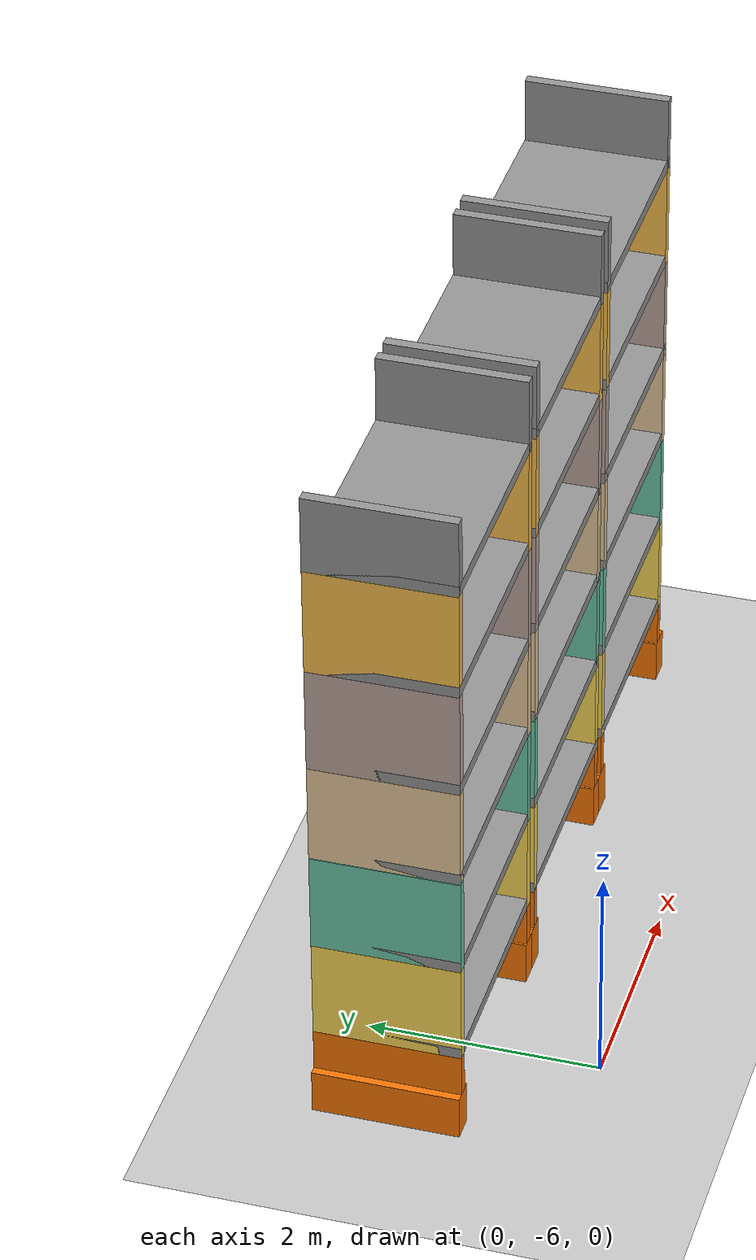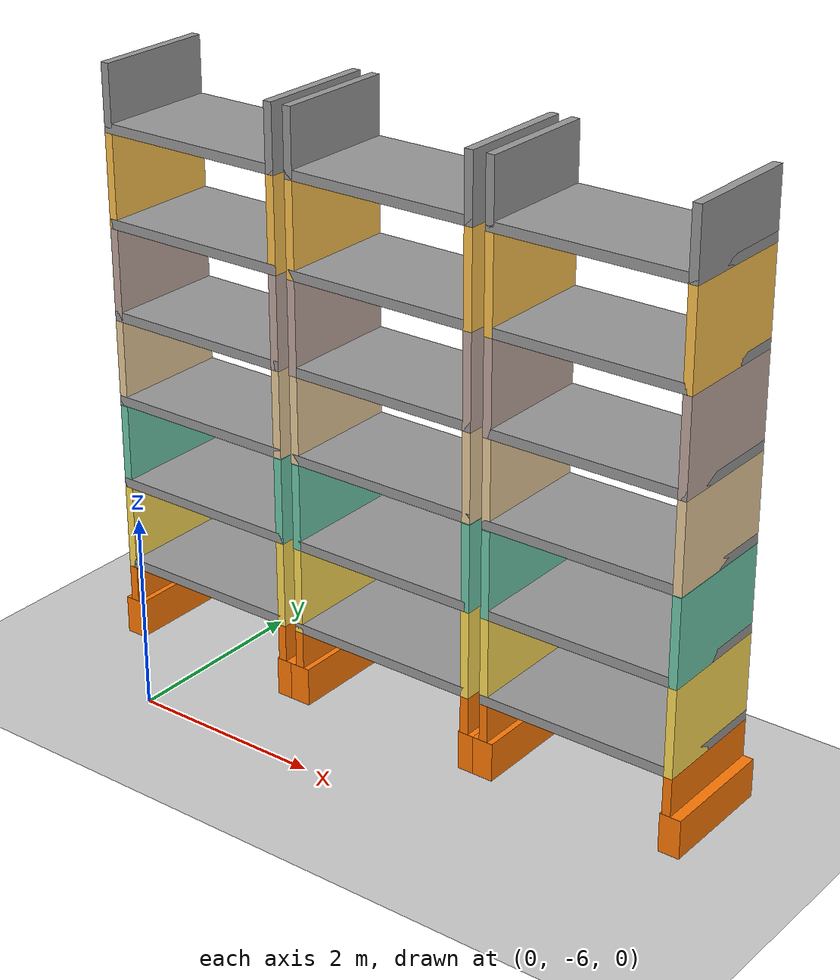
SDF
<sdf version="1.6">
 <world name="pseudo_world1">
  <model name="ground_plane">
   <static>1</static>
   <link name="link">
    <collision name="collision">
     <geometry><plane><normal>0 0 1</normal><size>100 100</size></plane></geometry>
     <surface><friction><ode><mu>100</mu><mu2>50</mu2></ode></friction></surface>
    </collision>
    <visual name="visual">
     <cast_shadows>0</cast_shadows>
     <geometry><plane><normal>0 0 1</normal><size>100 100</size></plane></geometry>
     <material>
      <script><uri>file://media/materials/scripts/gazebo.material</uri><name>Gazebo/Grey</name></script>
     </material>
    </visual>
   </link>
  </model>
  <model name="rack_whole_3">
   <static>1</static>
   <pose>0 -4.478 0 0 -0 0</pose>
   <link name="Base_L">
    <collision name="Base_L_Collision">
     <geometry><box><size>1.258 0.22 0.4</size></box></geometry>
     <pose>0 0 0.2 0 -0 0</pose>
    </collision>
    <visual name="Base_L_Visual">
     <pose>0 0 0.2 0 -0 0</pose>
     <geometry><box><size>1.258 0.22 0.4</size></box></geometry>
     <material>
      <script><uri>file://media/materials/scripts/gazebo.material</uri><name>Gazebo/Grey</name></script>
      <ambient>0.996078 0.47451 0.0196078 1</ambient>
     </material>
     <meta><layer>0</layer></meta>
    </visual>
    <pose>-1.02 0 0 0 -0 1.5708</pose>
   </link>
   <link name="Base_R">
    <collision name="Base_R_Collision">
     <geometry><box><size>1.258 0.22 0.4</size></box></geometry>
     <pose>0 0 0.2 0 -0 0</pose>
    </collision>
    <visual name="Base_R_Visual">
     <pose>0 0 0.2 0 -0 0</pose>
     <geometry><box><size>1.258 0.22 0.4</size></box></geometry>
     <material>
      <script><uri>file://media/materials/scripts/gazebo.material</uri><name>Gazebo/Grey</name></script>
      <ambient>0.996078 0.47451 0.0196078 1</ambient>
     </material>
     <meta><layer>0</layer></meta>
    </visual>
    <pose>1.02 0 0 0 -0 1.5708</pose>
   </link>
   <link name="Wall_1_L">
    <collision name="Wall_1_L_Collision">
     <geometry><box><size>1.258 0.09 0.387</size></box></geometry>
     <pose>0 0 0.1935 0 -0 0</pose>
    </collision>
    <visual name="Wall_1_L_Visual">
     <pose>0 0 0.1935 0 -0 0</pose>
     <geometry><box><size>1.258 0.09 0.387</size></box></geometry>
     <material>
      <script><uri>file://media/materials/scripts/gazebo.material</uri><name>Gazebo/Grey</name></script>
      <ambient>0.996078 0.47451 0.0196078 1</ambient>
     </material>
     <meta><layer>1</layer></meta>
    </visual>
    <pose>-1.015 0 0.4 0 -0 1.5708</pose>
   </link>
   <link name="Wall_1_R">
    <collision name="Wall_1_R_Collision">
     <geometry><box><size>1.258 0.09 0.387</size></box></geometry>
     <pose>0 0 0.1935 0 -0 0</pose>
    </collision>
    <visual name="Wall_1_R_Visual">
     <pose>0 0 0.1935 0 -0 0</pose>
     <geometry><box><size>1.258 0.09 0.387</size></box></geometry>
     <material>
      <script><uri>file://media/materials/scripts/gazebo.material</uri><name>Gazebo/Grey</name></script>
      <ambient>0.996078 0.47451 0.0196078 1</ambient>
     </material>
     <meta><layer>1</layer></meta>
    </visual>
    <pose>0.975 0 0.4 0 -0 1.5708</pose>
   </link>
   <link name="Floor_1">
    <collision name="Floor_1_Collision">
     <geometry><box><size>2.08 1.258 0.1</size></box></geometry>
     <pose>0 0 0.05 0 -0 0</pose>
    </collision>
    <visual name="Floor_1_Visual">
     <pose>0 0 0.05 0 -0 0</pose>
     <geometry><box><size>2.08 1.258 0.1</size></box></geometry>
     <material>
      <script><uri>file://media/materials/scripts/gazebo.material</uri><name>Gazebo/Grey</name></script>
      <ambient>1 1 1 1</ambient>
     </material>
     <meta><layer>2</layer></meta>
    </visual>
    <pose>-0.02 0 0.787 0 -0 0</pose>
   </link>
   <link name="Wall_2_L">
    <collision name="Wall_2_L_Collision">
     <geometry><box><size>1.258 0.09 0.905</size></box></geometry>
     <pose>0 0 0.4525 0 -0 0</pose>
    </collision>
    <visual name="Wall_2_L_Visual">
     <pose>0 0 0.4525 0 -0 0</pose>
     <geometry><box><size>1.258 0.09 0.905</size></box></geometry>
     <material>
      <script><uri>file://media/materials/scripts/gazebo.material</uri><name>Gazebo/Grey</name></script>
      <ambient>1 0.87 0.34 1</ambient>
     </material>
     <meta><layer>2</layer></meta>
    </visual>
    <pose>-1.015 0 0.787 0 -0 1.5708</pose>
   </link>
   <link name="Wall_2_R">
    <collision name="Wall_2_R_Collision">
     <geometry><box><size>1.258 0.09 0.905</size></box></geometry>
     <pose>0 0 0.4525 0 -0 0</pose>
    </collision>
    <visual name="Wall_2_R_Visual">
     <pose>0 0 0.4525 0 -0 0</pose>
     <geometry><box><size>1.258 0.09 0.905</size></box></geometry>
     <material>
      <script><uri>file://media/materials/scripts/gazebo.material</uri><name>Gazebo/Grey</name></script>
      <ambient>1 0.87 0.34 1</ambient>
     </material>
     <meta><layer>2</layer></meta>
    </visual>
    <pose>0.975 0 0.787 0 -0 1.5708</pose>
   </link>
   <link name="Floor_2">
    <collision name="Floor_2_Collision">
     <geometry><box><size>2.08 1.258 0.1</size></box></geometry>
     <pose>0 0 0.05 0 -0 0</pose>
    </collision>
    <visual name="Floor_2_Visual">
     <pose>0 0 0.05 0 -0 0</pose>
     <geometry><box><size>2.08 1.258 0.1</size></box></geometry>
     <material>
      <script><uri>file://media/materials/scripts/gazebo.material</uri><name>Gazebo/Grey</name></script>
      <ambient>1 1 1 1</ambient>
     </material>
     <meta><layer>3</layer></meta>
    </visual>
    <pose>-0.02 0 1.692 0 -0 0</pose>
   </link>
   <link name="Wall_3_L">
    <collision name="Wall_3_L_Collision">
     <geometry><box><size>1.258 0.09 0.899</size></box></geometry>
     <pose>0 0 0.4495 0 -0 0</pose>
    </collision>
    <visual name="Wall_3_L_Visual">
     <pose>0 0 0.4495 0 -0 0</pose>
     <geometry><box><size>1.258 0.09 0.899</size></box></geometry>
     <material>
      <script><uri>file://media/materials/scripts/gazebo.material</uri><name>Gazebo/Grey</name></script>
      <ambient>0.435294 0.796078 0.67451 1</ambient>
     </material>
     <meta><layer>3</layer></meta>
    </visual>
    <pose>-1.015 0 1.692 0 -0 1.5708</pose>
   </link>
   <link name="Wall_3_R">
    <collision name="Wall_3_R_Collision">
     <geometry><box><size>1.258 0.09 0.899</size></box></geometry>
     <pose>0 0 0.4495 0 -0 0</pose>
    </collision>
    <visual name="Wall_3_R_Visual">
     <pose>0 0 0.4495 0 -0 0</pose>
     <geometry><box><size>1.258 0.09 0.899</size></box></geometry>
     <material>
      <script><uri>file://media/materials/scripts/gazebo.material</uri><name>Gazebo/Grey</name></script>
      <ambient>0.435294 0.796078 0.67451 1</ambient>
     </material>
     <meta><layer>3</layer></meta>
    </visual>
    <pose>0.975 0 1.692 0 -0 1.5708</pose>
   </link>
   <link name="Floor_3">
    <collision name="Floor_3_Collision">
     <geometry><box><size>2.08 1.258 0.1</size></box></geometry>
     <pose>0 0 0.05 0 -0 0</pose>
    </collision>
    <visual name="Floor_3_Visual">
     <pose>0 0 0.05 0 -0 0</pose>
     <geometry><box><size>2.08 1.258 0.1</size></box></geometry>
     <material>
      <script><uri>file://media/materials/scripts/gazebo.material</uri><name>Gazebo/Grey</name></script>
      <ambient>1 1 1 1</ambient>
     </material>
     <meta><layer>4</layer></meta>
    </visual>
    <pose>-0.02 0 2.597 0 -0 0</pose>
   </link>
   <link name="Wall_4_L">
    <collision name="Wall_4_L_Collision">
     <geometry><box><size>1.258 0.09 0.9</size></box></geometry>
     <pose>0 0 0.45 0 -0 0</pose>
    </collision>
    <visual name="Wall_4_L_Visual">
     <pose>0 0 0.45 0 -0 0</pose>
     <geometry><box><size>1.258 0.09 0.9</size></box></geometry>
     <material>
      <script><uri>file://media/materials/scripts/gazebo.material</uri><name>Gazebo/Grey</name></script>
      <ambient>0.921569 0.807843 0.615686 1</ambient>
     </material>
     <meta><layer>4</layer></meta>
    </visual>
    <pose>-1.015 0 2.597 0 -0 1.5708</pose>
   </link>
   <link name="Wall_4_R">
    <collision name="Wall_4_R_Collision">
     <geometry><box><size>1.258 0.09 0.9</size></box></geometry>
     <pose>0 0 0.45 0 -0 0</pose>
    </collision>
    <visual name="Wall_4_R_Visual">
     <pose>0 0 0.45 0 -0 0</pose>
     <geometry><box><size>1.258 0.09 0.9</size></box></geometry>
     <material>
      <script><uri>file://media/materials/scripts/gazebo.material</uri><name>Gazebo/Grey</name></script>
      <ambient>0.921569 0.807843 0.615686 1</ambient>
     </material>
     <meta><layer>4</layer></meta>
    </visual>
    <pose>0.975 0 2.597 0 -0 1.5708</pose>
   </link>
   <link name="Floor_4">
    <collision name="Floor_4_Collision">
     <geometry><box><size>2.08 1.258 0.1</size></box></geometry>
     <pose>0 0 0.05 0 -0 0</pose>
    </collision>
    <visual name="Floor_4_Visual">
     <pose>0 0 0.05 0 -0 0</pose>
     <geometry><box><size>2.08 1.258 0.1</size></box></geometry>
     <material>
      <script><uri>file://media/materials/scripts/gazebo.material</uri><name>Gazebo/Grey</name></script>
      <ambient>1 1 1 1</ambient>
     </material>
     <meta><layer>5</layer></meta>
    </visual>
    <pose>-0.02 0 3.497 0 -0 0</pose>
   </link>
   <link name="Wall_5_L">
    <collision name="Wall_5_L_Collision">
     <geometry><box><size>1.258 0.09 0.952</size></box></geometry>
     <pose>0 0 0.476 0 -0 0</pose>
    </collision>
    <visual name="Wall_5_L_Visual">
     <pose>0 0 0.476 0 -0 0</pose>
     <geometry><box><size>1.258 0.09 0.952</size></box></geometry>
     <material>
      <script><uri>file://media/materials/scripts/gazebo.material</uri><name>Gazebo/Grey</name></script>
      <ambient>0.760784 0.662745 0.627451 1</ambient>
     </material>
     <meta><layer>5</layer></meta>
    </visual>
    <pose>-1.015 0 3.497 0 -0 1.5708</pose>
   </link>
   <link name="Wall_5_R">
    <collision name="Wall_5_R_Collision">
     <geometry><box><size>1.258 0.09 0.952</size></box></geometry>
     <pose>0 0 0.476 0 -0 0</pose>
    </collision>
    <visual name="Wall_5_R_Visual">
     <pose>0 0 0.476 0 -0 0</pose>
     <geometry><box><size>1.258 0.09 0.952</size></box></geometry>
     <material>
      <script><uri>file://media/materials/scripts/gazebo.material</uri><name>Gazebo/Grey</name></script>
      <ambient>0.760784 0.662745 0.627451 1</ambient>
     </material>
     <meta><layer>5</layer></meta>
    </visual>
    <pose>0.975 0 3.497 0 -0 1.5708</pose>
   </link>
   <link name="Floor_5">
    <collision name="Floor_5_Collision">
     <geometry><box><size>2.08 1.258 0.1</size></box></geometry>
     <pose>0 0 0.05 0 -0 0</pose>
    </collision>
    <visual name="Floor_5_Visual">
     <pose>0 0 0.05 0 -0 0</pose>
     <geometry><box><size>2.08 1.258 0.1</size></box></geometry>
     <material>
      <script><uri>file://media/materials/scripts/gazebo.material</uri><name>Gazebo/Grey</name></script>
      <ambient>1 1 1 1</ambient>
     </material>
     <meta><layer>6</layer></meta>
    </visual>
    <pose>-0.02 0 4.449 0 -0 0</pose>
   </link>
   <link name="Wall_6_L">
    <collision name="Wall_6_L_Collision">
     <geometry><box><size>1.258 0.09 0.957</size></box></geometry>
     <pose>0 0 0.4785 0 -0 0</pose>
    </collision>
    <visual name="Wall_6_L_Visual">
     <pose>0 0 0.4785 0 -0 0</pose>
     <geometry><box><size>1.258 0.09 0.957</size></box></geometry>
     <material>
      <script><uri>file://media/materials/scripts/gazebo.material</uri><name>Gazebo/Grey</name></script>
      <ambient>1 0.764706 0.305882 1</ambient>
     </material>
     <meta><layer>6</layer></meta>
    </visual>
    <pose>-1.015 0 4.449 0 -0 1.5708</pose>
   </link>
   <link name="Wall_6_R">
    <collision name="Wall_6_R_Collision">
     <geometry><box><size>1.258 0.09 0.957</size></box></geometry>
     <pose>0 0 0.4785 0 -0 0</pose>
    </collision>
    <visual name="Wall_6_R_Visual">
     <pose>0 0 0.4785 0 -0 0</pose>
     <geometry><box><size>1.258 0.09 0.957</size></box></geometry>
     <material>
      <script><uri>file://media/materials/scripts/gazebo.material</uri><name>Gazebo/Grey</name></script>
      <ambient>1 0.764706 0.305882 1</ambient>
     </material>
     <meta><layer>6</layer></meta>
    </visual>
    <pose>0.975 0 4.449 0 -0 1.5708</pose>
   </link>
   <link name="Floor_6">
    <collision name="Floor_6_Collision">
     <geometry><box><size>2.08 1.258 0.1</size></box></geometry>
     <pose>0 0 0.05 0 -0 0</pose>
    </collision>
    <visual name="Floor_6_Visual">
     <pose>0 0 0.05 0 -0 0</pose>
     <geometry><box><size>2.08 1.258 0.1</size></box></geometry>
     <material>
      <script><uri>file://media/materials/scripts/gazebo.material</uri><name>Gazebo/Grey</name></script>
      <ambient>1 1 1 1</ambient>
     </material>
     <meta><layer>7</layer></meta>
    </visual>
    <pose>-0.02 0 5.406 0 -0 0</pose>
   </link>
   <link name="Wall_7_L">
    <collision name="Wall_7_L_Collision">
     <geometry><box><size>1.258 0.09 0.685</size></box></geometry>
     <pose>0 0 0.3425 0 -0 0</pose>
    </collision>
    <visual name="Wall_7_L_Visual">
     <pose>0 0 0.3425 0 -0 0</pose>
     <geometry><box><size>1.258 0.09 0.685</size></box></geometry>
     <material>
      <script><uri>file://media/materials/scripts/gazebo.material</uri><name>Gazebo/Grey</name></script>
      <ambient>1 1 1 1</ambient>
     </material>
     <meta><layer>7</layer></meta>
    </visual>
    <pose>-1.015 0 5.406 0 -0 1.5708</pose>
   </link>
   <link name="Wall_7_R">
    <collision name="Wall_7_R_Collision">
     <geometry><box><size>1.258 0.09 0.685</size></box></geometry>
     <pose>0 0 0.3425 0 -0 0</pose>
    </collision>
    <visual name="Wall_7_R_Visual">
     <pose>0 0 0.3425 0 -0 0</pose>
     <geometry><box><size>1.258 0.09 0.685</size></box></geometry>
     <material>
      <script><uri>file://media/materials/scripts/gazebo.material</uri><name>Gazebo/Grey</name></script>
      <ambient>1 1 1 1</ambient>
     </material>
     <meta><layer>7</layer></meta>
    </visual>
    <pose>0.975 0 5.406 0 -0 1.5708</pose>
   </link>
  </model>
  <model name="rack_whole_4">
   <static>1</static>
   <pose>2.21 -4.478 0 0 -0 0</pose>
   <link name="Base_L">
    <collision name="Base_L_Collision">
     <geometry><box><size>1.258 0.22 0.4</size></box></geometry>
     <pose>0 0 0.2 0 -0 0</pose>
    </collision>
    <visual name="Base_L_Visual">
     <pose>0 0 0.2 0 -0 0</pose>
     <geometry><box><size>1.258 0.22 0.4</size></box></geometry>
     <material>
      <script><uri>file://media/materials/scripts/gazebo.material</uri><name>Gazebo/Grey</name></script>
      <ambient>0.996078 0.47451 0.0196078 1</ambient>
     </material>
     <meta><layer>0</layer></meta>
    </visual>
    <pose>-1.02 0 0 0 -0 1.5708</pose>
   </link>
   <link name="Base_R">
    <collision name="Base_R_Collision">
     <geometry><box><size>1.258 0.22 0.4</size></box></geometry>
     <pose>0 0 0.2 0 -0 0</pose>
    </collision>
    <visual name="Base_R_Visual">
     <pose>0 0 0.2 0 -0 0</pose>
     <geometry><box><size>1.258 0.22 0.4</size></box></geometry>
     <material>
      <script><uri>file://media/materials/scripts/gazebo.material</uri><name>Gazebo/Grey</name></script>
      <ambient>0.996078 0.47451 0.0196078 1</ambient>
     </material>
     <meta><layer>0</layer></meta>
    </visual>
    <pose>1.02 0 0 0 -0 1.5708</pose>
   </link>
   <link name="Wall_1_L">
    <collision name="Wall_1_L_Collision">
     <geometry><box><size>1.258 0.09 0.387</size></box></geometry>
     <pose>0 0 0.1935 0 -0 0</pose>
    </collision>
    <visual name="Wall_1_L_Visual">
     <pose>0 0 0.1935 0 -0 0</pose>
     <geometry><box><size>1.258 0.09 0.387</size></box></geometry>
     <material>
      <script><uri>file://media/materials/scripts/gazebo.material</uri><name>Gazebo/Grey</name></script>
      <ambient>0.996078 0.47451 0.0196078 1</ambient>
     </material>
     <meta><layer>1</layer></meta>
    </visual>
    <pose>-1.015 0 0.4 0 -0 1.5708</pose>
   </link>
   <link name="Wall_1_R">
    <collision name="Wall_1_R_Collision">
     <geometry><box><size>1.258 0.09 0.387</size></box></geometry>
     <pose>0 0 0.1935 0 -0 0</pose>
    </collision>
    <visual name="Wall_1_R_Visual">
     <pose>0 0 0.1935 0 -0 0</pose>
     <geometry><box><size>1.258 0.09 0.387</size></box></geometry>
     <material>
      <script><uri>file://media/materials/scripts/gazebo.material</uri><name>Gazebo/Grey</name></script>
      <ambient>0.996078 0.47451 0.0196078 1</ambient>
     </material>
     <meta><layer>1</layer></meta>
    </visual>
    <pose>0.975 0 0.4 0 -0 1.5708</pose>
   </link>
   <link name="Floor_1">
    <collision name="Floor_1_Collision">
     <geometry><box><size>2.08 1.258 0.1</size></box></geometry>
     <pose>0 0 0.05 0 -0 0</pose>
    </collision>
    <visual name="Floor_1_Visual">
     <pose>0 0 0.05 0 -0 0</pose>
     <geometry><box><size>2.08 1.258 0.1</size></box></geometry>
     <material>
      <script><uri>file://media/materials/scripts/gazebo.material</uri><name>Gazebo/Grey</name></script>
      <ambient>1 1 1 1</ambient>
     </material>
     <meta><layer>2</layer></meta>
    </visual>
    <pose>-0.02 0 0.787 0 -0 0</pose>
   </link>
   <link name="Wall_2_L">
    <collision name="Wall_2_L_Collision">
     <geometry><box><size>1.258 0.09 0.905</size></box></geometry>
     <pose>0 0 0.4525 0 -0 0</pose>
    </collision>
    <visual name="Wall_2_L_Visual">
     <pose>0 0 0.4525 0 -0 0</pose>
     <geometry><box><size>1.258 0.09 0.905</size></box></geometry>
     <material>
      <script><uri>file://media/materials/scripts/gazebo.material</uri><name>Gazebo/Grey</name></script>
      <ambient>1 0.87 0.34 1</ambient>
     </material>
     <meta><layer>2</layer></meta>
    </visual>
    <pose>-1.015 0 0.787 0 -0 1.5708</pose>
   </link>
   <link name="Wall_2_R">
    <collision name="Wall_2_R_Collision">
     <geometry><box><size>1.258 0.09 0.905</size></box></geometry>
     <pose>0 0 0.4525 0 -0 0</pose>
    </collision>
    <visual name="Wall_2_R_Visual">
     <pose>0 0 0.4525 0 -0 0</pose>
     <geometry><box><size>1.258 0.09 0.905</size></box></geometry>
     <material>
      <script><uri>file://media/materials/scripts/gazebo.material</uri><name>Gazebo/Grey</name></script>
      <ambient>1 0.87 0.34 1</ambient>
     </material>
     <meta><layer>2</layer></meta>
    </visual>
    <pose>0.975 0 0.787 0 -0 1.5708</pose>
   </link>
   <link name="Floor_2">
    <collision name="Floor_2_Collision">
     <geometry><box><size>2.08 1.258 0.1</size></box></geometry>
     <pose>0 0 0.05 0 -0 0</pose>
    </collision>
    <visual name="Floor_2_Visual">
     <pose>0 0 0.05 0 -0 0</pose>
     <geometry><box><size>2.08 1.258 0.1</size></box></geometry>
     <material>
      <script><uri>file://media/materials/scripts/gazebo.material</uri><name>Gazebo/Grey</name></script>
      <ambient>1 1 1 1</ambient>
     </material>
     <meta><layer>3</layer></meta>
    </visual>
    <pose>-0.02 0 1.692 0 -0 0</pose>
   </link>
   <link name="Wall_3_L">
    <collision name="Wall_3_L_Collision">
     <geometry><box><size>1.258 0.09 0.899</size></box></geometry>
     <pose>0 0 0.4495 0 -0 0</pose>
    </collision>
    <visual name="Wall_3_L_Visual">
     <pose>0 0 0.4495 0 -0 0</pose>
     <geometry><box><size>1.258 0.09 0.899</size></box></geometry>
     <material>
      <script><uri>file://media/materials/scripts/gazebo.material</uri><name>Gazebo/Grey</name></script>
      <ambient>0.435294 0.796078 0.67451 1</ambient>
     </material>
     <meta><layer>3</layer></meta>
    </visual>
    <pose>-1.015 0 1.692 0 -0 1.5708</pose>
   </link>
   <link name="Wall_3_R">
    <collision name="Wall_3_R_Collision">
     <geometry><box><size>1.258 0.09 0.899</size></box></geometry>
     <pose>0 0 0.4495 0 -0 0</pose>
    </collision>
    <visual name="Wall_3_R_Visual">
     <pose>0 0 0.4495 0 -0 0</pose>
     <geometry><box><size>1.258 0.09 0.899</size></box></geometry>
     <material>
      <script><uri>file://media/materials/scripts/gazebo.material</uri><name>Gazebo/Grey</name></script>
      <ambient>0.435294 0.796078 0.67451 1</ambient>
     </material>
     <meta><layer>3</layer></meta>
    </visual>
    <pose>0.975 0 1.692 0 -0 1.5708</pose>
   </link>
   <link name="Floor_3">
    <collision name="Floor_3_Collision">
     <geometry><box><size>2.08 1.258 0.1</size></box></geometry>
     <pose>0 0 0.05 0 -0 0</pose>
    </collision>
    <visual name="Floor_3_Visual">
     <pose>0 0 0.05 0 -0 0</pose>
     <geometry><box><size>2.08 1.258 0.1</size></box></geometry>
     <material>
      <script><uri>file://media/materials/scripts/gazebo.material</uri><name>Gazebo/Grey</name></script>
      <ambient>1 1 1 1</ambient>
     </material>
     <meta><layer>4</layer></meta>
    </visual>
    <pose>-0.02 0 2.597 0 -0 0</pose>
   </link>
   <link name="Wall_4_L">
    <collision name="Wall_4_L_Collision">
     <geometry><box><size>1.258 0.09 0.9</size></box></geometry>
     <pose>0 0 0.45 0 -0 0</pose>
    </collision>
    <visual name="Wall_4_L_Visual">
     <pose>0 0 0.45 0 -0 0</pose>
     <geometry><box><size>1.258 0.09 0.9</size></box></geometry>
     <material>
      <script><uri>file://media/materials/scripts/gazebo.material</uri><name>Gazebo/Grey</name></script>
      <ambient>0.921569 0.807843 0.615686 1</ambient>
     </material>
     <meta><layer>4</layer></meta>
    </visual>
    <pose>-1.015 0 2.597 0 -0 1.5708</pose>
   </link>
   <link name="Wall_4_R">
    <collision name="Wall_4_R_Collision">
     <geometry><box><size>1.258 0.09 0.9</size></box></geometry>
     <pose>0 0 0.45 0 -0 0</pose>
    </collision>
    <visual name="Wall_4_R_Visual">
     <pose>0 0 0.45 0 -0 0</pose>
     <geometry><box><size>1.258 0.09 0.9</size></box></geometry>
     <material>
      <script><uri>file://media/materials/scripts/gazebo.material</uri><name>Gazebo/Grey</name></script>
      <ambient>0.921569 0.807843 0.615686 1</ambient>
     </material>
     <meta><layer>4</layer></meta>
    </visual>
    <pose>0.975 0 2.597 0 -0 1.5708</pose>
   </link>
   <link name="Floor_4">
    <collision name="Floor_4_Collision">
     <geometry><box><size>2.08 1.258 0.1</size></box></geometry>
     <pose>0 0 0.05 0 -0 0</pose>
    </collision>
    <visual name="Floor_4_Visual">
     <pose>0 0 0.05 0 -0 0</pose>
     <geometry><box><size>2.08 1.258 0.1</size></box></geometry>
     <material>
      <script><uri>file://media/materials/scripts/gazebo.material</uri><name>Gazebo/Grey</name></script>
      <ambient>1 1 1 1</ambient>
     </material>
     <meta><layer>5</layer></meta>
    </visual>
    <pose>-0.02 0 3.497 0 -0 0</pose>
   </link>
   <link name="Wall_5_L">
    <collision name="Wall_5_L_Collision">
     <geometry><box><size>1.258 0.09 0.952</size></box></geometry>
     <pose>0 0 0.476 0 -0 0</pose>
    </collision>
    <visual name="Wall_5_L_Visual">
     <pose>0 0 0.476 0 -0 0</pose>
     <geometry><box><size>1.258 0.09 0.952</size></box></geometry>
     <material>
      <script><uri>file://media/materials/scripts/gazebo.material</uri><name>Gazebo/Grey</name></script>
      <ambient>0.760784 0.662745 0.627451 1</ambient>
     </material>
     <meta><layer>5</layer></meta>
    </visual>
    <pose>-1.015 0 3.497 0 -0 1.5708</pose>
   </link>
   <link name="Wall_5_R">
    <collision name="Wall_5_R_Collision">
     <geometry><box><size>1.258 0.09 0.952</size></box></geometry>
     <pose>0 0 0.476 0 -0 0</pose>
    </collision>
    <visual name="Wall_5_R_Visual">
     <pose>0 0 0.476 0 -0 0</pose>
     <geometry><box><size>1.258 0.09 0.952</size></box></geometry>
     <material>
      <script><uri>file://media/materials/scripts/gazebo.material</uri><name>Gazebo/Grey</name></script>
      <ambient>0.760784 0.662745 0.627451 1</ambient>
     </material>
     <meta><layer>5</layer></meta>
    </visual>
    <pose>0.975 0 3.497 0 -0 1.5708</pose>
   </link>
   <link name="Floor_5">
    <collision name="Floor_5_Collision">
     <geometry><box><size>2.08 1.258 0.1</size></box></geometry>
     <pose>0 0 0.05 0 -0 0</pose>
    </collision>
    <visual name="Floor_5_Visual">
     <pose>0 0 0.05 0 -0 0</pose>
     <geometry><box><size>2.08 1.258 0.1</size></box></geometry>
     <material>
      <script><uri>file://media/materials/scripts/gazebo.material</uri><name>Gazebo/Grey</name></script>
      <ambient>1 1 1 1</ambient>
     </material>
     <meta><layer>6</layer></meta>
    </visual>
    <pose>-0.02 0 4.449 0 -0 0</pose>
   </link>
   <link name="Wall_6_L">
    <collision name="Wall_6_L_Collision">
     <geometry><box><size>1.258 0.09 0.957</size></box></geometry>
     <pose>0 0 0.4785 0 -0 0</pose>
    </collision>
    <visual name="Wall_6_L_Visual">
     <pose>0 0 0.4785 0 -0 0</pose>
     <geometry><box><size>1.258 0.09 0.957</size></box></geometry>
     <material>
      <script><uri>file://media/materials/scripts/gazebo.material</uri><name>Gazebo/Grey</name></script>
      <ambient>1 0.764706 0.305882 1</ambient>
     </material>
     <meta><layer>6</layer></meta>
    </visual>
    <pose>-1.015 0 4.449 0 -0 1.5708</pose>
   </link>
   <link name="Wall_6_R">
    <collision name="Wall_6_R_Collision">
     <geometry><box><size>1.258 0.09 0.957</size></box></geometry>
     <pose>0 0 0.4785 0 -0 0</pose>
    </collision>
    <visual name="Wall_6_R_Visual">
     <pose>0 0 0.4785 0 -0 0</pose>
     <geometry><box><size>1.258 0.09 0.957</size></box></geometry>
     <material>
      <script><uri>file://media/materials/scripts/gazebo.material</uri><name>Gazebo/Grey</name></script>
      <ambient>1 0.764706 0.305882 1</ambient>
     </material>
     <meta><layer>6</layer></meta>
    </visual>
    <pose>0.975 0 4.449 0 -0 1.5708</pose>
   </link>
   <link name="Floor_6">
    <collision name="Floor_6_Collision">
     <geometry><box><size>2.08 1.258 0.1</size></box></geometry>
     <pose>0 0 0.05 0 -0 0</pose>
    </collision>
    <visual name="Floor_6_Visual">
     <pose>0 0 0.05 0 -0 0</pose>
     <geometry><box><size>2.08 1.258 0.1</size></box></geometry>
     <material>
      <script><uri>file://media/materials/scripts/gazebo.material</uri><name>Gazebo/Grey</name></script>
      <ambient>1 1 1 1</ambient>
     </material>
     <meta><layer>7</layer></meta>
    </visual>
    <pose>-0.02 0 5.406 0 -0 0</pose>
   </link>
   <link name="Wall_7_L">
    <collision name="Wall_7_L_Collision">
     <geometry><box><size>1.258 0.09 0.685</size></box></geometry>
     <pose>0 0 0.3425 0 -0 0</pose>
    </collision>
    <visual name="Wall_7_L_Visual">
     <pose>0 0 0.3425 0 -0 0</pose>
     <geometry><box><size>1.258 0.09 0.685</size></box></geometry>
     <material>
      <script><uri>file://media/materials/scripts/gazebo.material</uri><name>Gazebo/Grey</name></script>
      <ambient>1 1 1 1</ambient>
     </material>
     <meta><layer>7</layer></meta>
    </visual>
    <pose>-1.015 0 5.406 0 -0 1.5708</pose>
   </link>
   <link name="Wall_7_R">
    <collision name="Wall_7_R_Collision">
     <geometry><box><size>1.258 0.09 0.685</size></box></geometry>
     <pose>0 0 0.3425 0 -0 0</pose>
    </collision>
    <visual name="Wall_7_R_Visual">
     <pose>0 0 0.3425 0 -0 0</pose>
     <geometry><box><size>1.258 0.09 0.685</size></box></geometry>
     <material>
      <script><uri>file://media/materials/scripts/gazebo.material</uri><name>Gazebo/Grey</name></script>
      <ambient>1 1 1 1</ambient>
     </material>
     <meta><layer>7</layer></meta>
    </visual>
    <pose>0.975 0 5.406 0 -0 1.5708</pose>
   </link>
  </model>
  <model name="rack_whole_5">
   <static>1</static>
   <pose>4.42 -4.478 0 0 -0 0</pose>
   <link name="Base_L">
    <collision name="Base_L_Collision">
     <geometry><box><size>1.258 0.22 0.4</size></box></geometry>
     <pose>0 0 0.2 0 -0 0</pose>
    </collision>
    <visual name="Base_L_Visual">
     <pose>0 0 0.2 0 -0 0</pose>
     <geometry><box><size>1.258 0.22 0.4</size></box></geometry>
     <material>
      <script><uri>file://media/materials/scripts/gazebo.material</uri><name>Gazebo/Grey</name></script>
      <ambient>0.996078 0.47451 0.0196078 1</ambient>
     </material>
     <meta><layer>0</layer></meta>
    </visual>
    <pose>-1.02 0 0 0 -0 1.5708</pose>
   </link>
   <link name="Base_R">
    <collision name="Base_R_Collision">
     <geometry><box><size>1.258 0.22 0.4</size></box></geometry>
     <pose>0 0 0.2 0 -0 0</pose>
    </collision>
    <visual name="Base_R_Visual">
     <pose>0 0 0.2 0 -0 0</pose>
     <geometry><box><size>1.258 0.22 0.4</size></box></geometry>
     <material>
      <script><uri>file://media/materials/scripts/gazebo.material</uri><name>Gazebo/Grey</name></script>
      <ambient>0.996078 0.47451 0.0196078 1</ambient>
     </material>
     <meta><layer>0</layer></meta>
    </visual>
    <pose>1.02 0 0 0 -0 1.5708</pose>
   </link>
   <link name="Wall_1_L">
    <collision name="Wall_1_L_Collision">
     <geometry><box><size>1.258 0.09 0.387</size></box></geometry>
     <pose>0 0 0.1935 0 -0 0</pose>
    </collision>
    <visual name="Wall_1_L_Visual">
     <pose>0 0 0.1935 0 -0 0</pose>
     <geometry><box><size>1.258 0.09 0.387</size></box></geometry>
     <material>
      <script><uri>file://media/materials/scripts/gazebo.material</uri><name>Gazebo/Grey</name></script>
      <ambient>0.996078 0.47451 0.0196078 1</ambient>
     </material>
     <meta><layer>1</layer></meta>
    </visual>
    <pose>-1.015 0 0.4 0 -0 1.5708</pose>
   </link>
   <link name="Wall_1_R">
    <collision name="Wall_1_R_Collision">
     <geometry><box><size>1.258 0.09 0.387</size></box></geometry>
     <pose>0 0 0.1935 0 -0 0</pose>
    </collision>
    <visual name="Wall_1_R_Visual">
     <pose>0 0 0.1935 0 -0 0</pose>
     <geometry><box><size>1.258 0.09 0.387</size></box></geometry>
     <material>
      <script><uri>file://media/materials/scripts/gazebo.material</uri><name>Gazebo/Grey</name></script>
      <ambient>0.996078 0.47451 0.0196078 1</ambient>
     </material>
     <meta><layer>1</layer></meta>
    </visual>
    <pose>0.975 0 0.4 0 -0 1.5708</pose>
   </link>
   <link name="Floor_1">
    <collision name="Floor_1_Collision">
     <geometry><box><size>2.08 1.258 0.1</size></box></geometry>
     <pose>0 0 0.05 0 -0 0</pose>
    </collision>
    <visual name="Floor_1_Visual">
     <pose>0 0 0.05 0 -0 0</pose>
     <geometry><box><size>2.08 1.258 0.1</size></box></geometry>
     <material>
      <script><uri>file://media/materials/scripts/gazebo.material</uri><name>Gazebo/Grey</name></script>
      <ambient>1 1 1 1</ambient>
     </material>
     <meta><layer>2</layer></meta>
    </visual>
    <pose>-0.02 0 0.787 0 -0 0</pose>
   </link>
   <link name="Wall_2_L">
    <collision name="Wall_2_L_Collision">
     <geometry><box><size>1.258 0.09 0.905</size></box></geometry>
     <pose>0 0 0.4525 0 -0 0</pose>
    </collision>
    <visual name="Wall_2_L_Visual">
     <pose>0 0 0.4525 0 -0 0</pose>
     <geometry><box><size>1.258 0.09 0.905</size></box></geometry>
     <material>
      <script><uri>file://media/materials/scripts/gazebo.material</uri><name>Gazebo/Grey</name></script>
      <ambient>1 0.87 0.34 1</ambient>
     </material>
     <meta><layer>2</layer></meta>
    </visual>
    <pose>-1.015 0 0.787 0 -0 1.5708</pose>
   </link>
   <link name="Wall_2_R">
    <collision name="Wall_2_R_Collision">
     <geometry><box><size>1.258 0.09 0.905</size></box></geometry>
     <pose>0 0 0.4525 0 -0 0</pose>
    </collision>
    <visual name="Wall_2_R_Visual">
     <pose>0 0 0.4525 0 -0 0</pose>
     <geometry><box><size>1.258 0.09 0.905</size></box></geometry>
     <material>
      <script><uri>file://media/materials/scripts/gazebo.material</uri><name>Gazebo/Grey</name></script>
      <ambient>1 0.87 0.34 1</ambient>
     </material>
     <meta><layer>2</layer></meta>
    </visual>
    <pose>0.975 0 0.787 0 -0 1.5708</pose>
   </link>
   <link name="Floor_2">
    <collision name="Floor_2_Collision">
     <geometry><box><size>2.08 1.258 0.1</size></box></geometry>
     <pose>0 0 0.05 0 -0 0</pose>
    </collision>
    <visual name="Floor_2_Visual">
     <pose>0 0 0.05 0 -0 0</pose>
     <geometry><box><size>2.08 1.258 0.1</size></box></geometry>
     <material>
      <script><uri>file://media/materials/scripts/gazebo.material</uri><name>Gazebo/Grey</name></script>
      <ambient>1 1 1 1</ambient>
     </material>
     <meta><layer>3</layer></meta>
    </visual>
    <pose>-0.02 0 1.692 0 -0 0</pose>
   </link>
   <link name="Wall_3_L">
    <collision name="Wall_3_L_Collision">
     <geometry><box><size>1.258 0.09 0.899</size></box></geometry>
     <pose>0 0 0.4495 0 -0 0</pose>
    </collision>
    <visual name="Wall_3_L_Visual">
     <pose>0 0 0.4495 0 -0 0</pose>
     <geometry><box><size>1.258 0.09 0.899</size></box></geometry>
     <material>
      <script><uri>file://media/materials/scripts/gazebo.material</uri><name>Gazebo/Grey</name></script>
      <ambient>0.435294 0.796078 0.67451 1</ambient>
     </material>
     <meta><layer>3</layer></meta>
    </visual>
    <pose>-1.015 0 1.692 0 -0 1.5708</pose>
   </link>
   <link name="Wall_3_R">
    <collision name="Wall_3_R_Collision">
     <geometry><box><size>1.258 0.09 0.899</size></box></geometry>
     <pose>0 0 0.4495 0 -0 0</pose>
    </collision>
    <visual name="Wall_3_R_Visual">
     <pose>0 0 0.4495 0 -0 0</pose>
     <geometry><box><size>1.258 0.09 0.899</size></box></geometry>
     <material>
      <script><uri>file://media/materials/scripts/gazebo.material</uri><name>Gazebo/Grey</name></script>
      <ambient>0.435294 0.796078 0.67451 1</ambient>
     </material>
     <meta><layer>3</layer></meta>
    </visual>
    <pose>0.975 0 1.692 0 -0 1.5708</pose>
   </link>
   <link name="Floor_3">
    <collision name="Floor_3_Collision">
     <geometry><box><size>2.08 1.258 0.1</size></box></geometry>
     <pose>0 0 0.05 0 -0 0</pose>
    </collision>
    <visual name="Floor_3_Visual">
     <pose>0 0 0.05 0 -0 0</pose>
     <geometry><box><size>2.08 1.258 0.1</size></box></geometry>
     <material>
      <script><uri>file://media/materials/scripts/gazebo.material</uri><name>Gazebo/Grey</name></script>
      <ambient>1 1 1 1</ambient>
     </material>
     <meta><layer>4</layer></meta>
    </visual>
    <pose>-0.02 0 2.597 0 -0 0</pose>
   </link>
   <link name="Wall_4_L">
    <collision name="Wall_4_L_Collision">
     <geometry><box><size>1.258 0.09 0.9</size></box></geometry>
     <pose>0 0 0.45 0 -0 0</pose>
    </collision>
    <visual name="Wall_4_L_Visual">
     <pose>0 0 0.45 0 -0 0</pose>
     <geometry><box><size>1.258 0.09 0.9</size></box></geometry>
     <material>
      <script><uri>file://media/materials/scripts/gazebo.material</uri><name>Gazebo/Grey</name></script>
      <ambient>0.921569 0.807843 0.615686 1</ambient>
     </material>
     <meta><layer>4</layer></meta>
    </visual>
    <pose>-1.015 0 2.597 0 -0 1.5708</pose>
   </link>
   <link name="Wall_4_R">
    <collision name="Wall_4_R_Collision">
     <geometry><box><size>1.258 0.09 0.9</size></box></geometry>
     <pose>0 0 0.45 0 -0 0</pose>
    </collision>
    <visual name="Wall_4_R_Visual">
     <pose>0 0 0.45 0 -0 0</pose>
     <geometry><box><size>1.258 0.09 0.9</size></box></geometry>
     <material>
      <script><uri>file://media/materials/scripts/gazebo.material</uri><name>Gazebo/Grey</name></script>
      <ambient>0.921569 0.807843 0.615686 1</ambient>
     </material>
     <meta><layer>4</layer></meta>
    </visual>
    <pose>0.975 0 2.597 0 -0 1.5708</pose>
   </link>
   <link name="Floor_4">
    <collision name="Floor_4_Collision">
     <geometry><box><size>2.08 1.258 0.1</size></box></geometry>
     <pose>0 0 0.05 0 -0 0</pose>
    </collision>
    <visual name="Floor_4_Visual">
     <pose>0 0 0.05 0 -0 0</pose>
     <geometry><box><size>2.08 1.258 0.1</size></box></geometry>
     <material>
      <script><uri>file://media/materials/scripts/gazebo.material</uri><name>Gazebo/Grey</name></script>
      <ambient>1 1 1 1</ambient>
     </material>
     <meta><layer>5</layer></meta>
    </visual>
    <pose>-0.02 0 3.497 0 -0 0</pose>
   </link>
   <link name="Wall_5_L">
    <collision name="Wall_5_L_Collision">
     <geometry><box><size>1.258 0.09 0.952</size></box></geometry>
     <pose>0 0 0.476 0 -0 0</pose>
    </collision>
    <visual name="Wall_5_L_Visual">
     <pose>0 0 0.476 0 -0 0</pose>
     <geometry><box><size>1.258 0.09 0.952</size></box></geometry>
     <material>
      <script><uri>file://media/materials/scripts/gazebo.material</uri><name>Gazebo/Grey</name></script>
      <ambient>0.760784 0.662745 0.627451 1</ambient>
     </material>
     <meta><layer>5</layer></meta>
    </visual>
    <pose>-1.015 0 3.497 0 -0 1.5708</pose>
   </link>
   <link name="Wall_5_R">
    <collision name="Wall_5_R_Collision">
     <geometry><box><size>1.258 0.09 0.952</size></box></geometry>
     <pose>0 0 0.476 0 -0 0</pose>
    </collision>
    <visual name="Wall_5_R_Visual">
     <pose>0 0 0.476 0 -0 0</pose>
     <geometry><box><size>1.258 0.09 0.952</size></box></geometry>
     <material>
      <script><uri>file://media/materials/scripts/gazebo.material</uri><name>Gazebo/Grey</name></script>
      <ambient>0.760784 0.662745 0.627451 1</ambient>
     </material>
     <meta><layer>5</layer></meta>
    </visual>
    <pose>0.975 0 3.497 0 -0 1.5708</pose>
   </link>
   <link name="Floor_5">
    <collision name="Floor_5_Collision">
     <geometry><box><size>2.08 1.258 0.1</size></box></geometry>
     <pose>0 0 0.05 0 -0 0</pose>
    </collision>
    <visual name="Floor_5_Visual">
     <pose>0 0 0.05 0 -0 0</pose>
     <geometry><box><size>2.08 1.258 0.1</size></box></geometry>
     <material>
      <script><uri>file://media/materials/scripts/gazebo.material</uri><name>Gazebo/Grey</name></script>
      <ambient>1 1 1 1</ambient>
     </material>
     <meta><layer>6</layer></meta>
    </visual>
    <pose>-0.02 0 4.449 0 -0 0</pose>
   </link>
   <link name="Wall_6_L">
    <collision name="Wall_6_L_Collision">
     <geometry><box><size>1.258 0.09 0.957</size></box></geometry>
     <pose>0 0 0.4785 0 -0 0</pose>
    </collision>
    <visual name="Wall_6_L_Visual">
     <pose>0 0 0.4785 0 -0 0</pose>
     <geometry><box><size>1.258 0.09 0.957</size></box></geometry>
     <material>
      <script><uri>file://media/materials/scripts/gazebo.material</uri><name>Gazebo/Grey</name></script>
      <ambient>1 0.764706 0.305882 1</ambient>
     </material>
     <meta><layer>6</layer></meta>
    </visual>
    <pose>-1.015 0 4.449 0 -0 1.5708</pose>
   </link>
   <link name="Wall_6_R">
    <collision name="Wall_6_R_Collision">
     <geometry><box><size>1.258 0.09 0.957</size></box></geometry>
     <pose>0 0 0.4785 0 -0 0</pose>
    </collision>
    <visual name="Wall_6_R_Visual">
     <pose>0 0 0.4785 0 -0 0</pose>
     <geometry><box><size>1.258 0.09 0.957</size></box></geometry>
     <material>
      <script><uri>file://media/materials/scripts/gazebo.material</uri><name>Gazebo/Grey</name></script>
      <ambient>1 0.764706 0.305882 1</ambient>
     </material>
     <meta><layer>6</layer></meta>
    </visual>
    <pose>0.975 0 4.449 0 -0 1.5708</pose>
   </link>
   <link name="Floor_6">
    <collision name="Floor_6_Collision">
     <geometry><box><size>2.08 1.258 0.1</size></box></geometry>
     <pose>0 0 0.05 0 -0 0</pose>
    </collision>
    <visual name="Floor_6_Visual">
     <pose>0 0 0.05 0 -0 0</pose>
     <geometry><box><size>2.08 1.258 0.1</size></box></geometry>
     <material>
      <script><uri>file://media/materials/scripts/gazebo.material</uri><name>Gazebo/Grey</name></script>
      <ambient>1 1 1 1</ambient>
     </material>
     <meta><layer>7</layer></meta>
    </visual>
    <pose>-0.02 0 5.406 0 -0 0</pose>
   </link>
   <link name="Wall_7_L">
    <collision name="Wall_7_L_Collision">
     <geometry><box><size>1.258 0.09 0.685</size></box></geometry>
     <pose>0 0 0.3425 0 -0 0</pose>
    </collision>
    <visual name="Wall_7_L_Visual">
     <pose>0 0 0.3425 0 -0 0</pose>
     <geometry><box><size>1.258 0.09 0.685</size></box></geometry>
     <material>
      <script><uri>file://media/materials/scripts/gazebo.material</uri><name>Gazebo/Grey</name></script>
      <ambient>1 1 1 1</ambient>
     </material>
     <meta><layer>7</layer></meta>
    </visual>
    <pose>-1.015 0 5.406 0 -0 1.5708</pose>
   </link>
   <link name="Wall_7_R">
    <collision name="Wall_7_R_Collision">
     <geometry><box><size>1.258 0.09 0.685</size></box></geometry>
     <pose>0 0 0.3425 0 -0 0</pose>
    </collision>
    <visual name="Wall_7_R_Visual">
     <pose>0 0 0.3425 0 -0 0</pose>
     <geometry><box><size>1.258 0.09 0.685</size></box></geometry>
     <material>
      <script><uri>file://media/materials/scripts/gazebo.material</uri><name>Gazebo/Grey</name></script>
      <ambient>1 1 1 1</ambient>
     </material>
     <meta><layer>7</layer></meta>
    </visual>
    <pose>0.975 0 5.406 0 -0 1.5708</pose>
   </link>
  </model>
 </world>
</sdf>
